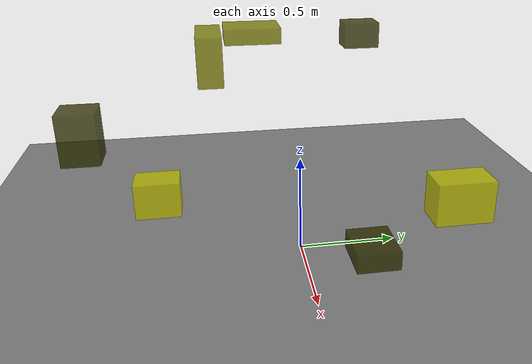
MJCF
<?xml version="1.0"?>
<mujoco model="obstacle_scene">
  <compiler angle="radian" coordinate="local"/>
  <option timestep="0.001" gravity="0 0 -9.81"/>

  <asset>
    <material name="obstacle_mat" rgba="0.8 0.8 0.0 0.8"/>
    <material name="ground_mat" rgba="0.5 0.5 0.5 1"/>
  </asset>

  <worldbody>
    <!-- Ground plane -->
    <geom name="ground" type="plane" size="3 3 0.1" material="ground_mat"/>

    <!-- Obstacles -->
    <body name="obstacle_0" pos="0.826311 0.141393 0.477126">
      <geom name="obs_0" type="box" size="0.096931 0.082525 0.037034" rgba="0.2 0.2 0.0 0.8"/>
    </body>
    <body name="obstacle_1" pos="-0.801883 -0.159839 0.974850">
      <geom name="obs_1" type="box" size="0.128128 0.160816 0.044888" rgba="0.5 0.5 0.0 0.8"/>
    </body>
    <body name="obstacle_2" pos="-0.063043 -0.704993 0.333490">
      <geom name="obs_2" type="box" size="0.081583 0.109903 0.089490" rgba="0.8 0.8 0.0 0.8"/>
    </body>
    <body name="obstacle_3" pos="0.653169 -0.871056 0.932780">
      <geom name="obs_3" type="box" size="0.062089 0.065922 0.093426" rgba="0.2 0.2 0.0 0.8"/>
    </body>
    <body name="obstacle_4" pos="-0.522096 -0.411899 0.913509">
      <geom name="obs_4" type="box" size="0.180927 0.067563 0.132475" rgba="0.5 0.5 0.0 0.8"/>
    </body>
    <body name="obstacle_5" pos="0.344781 0.699318 0.406302">
      <geom name="obs_5" type="box" size="0.083188 0.138266 0.104136" rgba="0.8 0.8 0.0 0.8"/>
    </body>
    <body name="obstacle_6" pos="-0.725711 0.467938 0.965227">
      <geom name="obs_6" type="box" size="0.078023 0.099755 0.071841" rgba="0.2 0.2 0.0 0.8"/>
    </body>
  </worldbody>
</mujoco>
